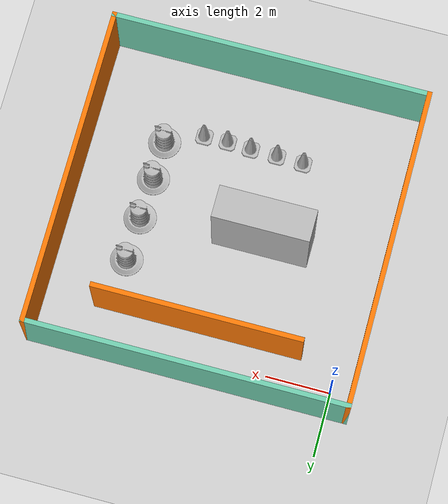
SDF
<sdf version="1.7">
 <world name="default">
  <light name="sun" type="directional">
   <pose>0 0 10 0 -0 0</pose>
   <diffuse>0.8 0.8 0.8 1</diffuse>
   <specular>0.2 0.2 0.2 1</specular>
   <attenuation>
    <range>1000</range>
    <constant>0.9</constant>
    <linear>0.01</linear>
    <quadratic>0.001</quadratic>
   </attenuation>
   <direction>-0.5 0.1 -0.9</direction>
   <spot><inner_angle>0</inner_angle><outer_angle>0</outer_angle><falloff>0</falloff></spot>
  </light>
  <model name="ground_plane">
   <static>1</static>
   <link name="link">
    <collision name="collision">
     <geometry><plane><normal>0 0 1</normal><size>100 100</size></plane></geometry>
     <surface><friction><ode><mu>100</mu><mu2>50</mu2></ode></friction></surface>
    </collision>
    <visual name="visual">
     <cast_shadows>0</cast_shadows>
     <geometry><plane><normal>0 0 1</normal><size>100 100</size></plane></geometry>
     <material>
      <script><uri>file://media/materials/scripts/gazebo.material</uri><name>Gazebo/Grey</name></script>
     </material>
    </visual>
   </link>
  </model>
  <gravity>0 0 -9.8</gravity>
  <magnetic_field>6e-06 2.3e-05 -4.2e-05</magnetic_field>
  <atmosphere type="adiabatic"/>
  <physics type="ode">
   <max_step_size>0.001</max_step_size>
   <real_time_factor>1</real_time_factor>
   <real_time_update_rate>1000</real_time_update_rate>
  </physics>
  <scene><ambient>0.4 0.4 0.4 1</ambient><background>0.7 0.7 0.7 1</background><shadows>1</shadows></scene>
  <audio><device>default</device></audio>
  <spherical_coordinates>
   <surface_model>EARTH_WGS84</surface_model>
   <latitude_deg>0</latitude_deg>
   <longitude_deg>0</longitude_deg>
   <elevation>0</elevation>
   <heading_deg>0</heading_deg>
  </spherical_coordinates>
  <model name="2line">
   <pose>4.29427 -4.22087 0 0 -0 0</pose>
   <link name="Wall_0">
    <collision name="Wall_0_Collision">
     <geometry><box><size>10 0.15 2.5</size></box></geometry>
     <pose>0 0 1.25 0 -0 0</pose>
    </collision>
    <visual name="Wall_0_Visual">
     <pose>0 0 1.25 0 -0 0</pose>
     <geometry><box><size>10 0.15 2.5</size></box></geometry>
     <material>
      <script><uri>file://media/materials/scripts/gazebo.material</uri><name>Gazebo/Grey</name></script>
      <ambient>0.435294 0.796078 0.67451 1</ambient>
     </material>
     <meta><layer>0</layer></meta>
    </visual>
    <pose>-0 4.925 0 0 -0 0</pose>
   </link>
   <link name="Wall_2">
    <collision name="Wall_2_Collision">
     <geometry><box><size>10 0.15 2.5</size></box></geometry>
     <pose>0 0 1.25 0 -0 0</pose>
    </collision>
    <visual name="Wall_2_Visual">
     <pose>0 0 1.25 0 -0 0</pose>
     <geometry><box><size>10 0.15 2.5</size></box></geometry>
     <material>
      <script><uri>file://media/materials/scripts/gazebo.material</uri><name>Gazebo/Grey</name></script>
      <ambient>0.996078 0.47451 0.0196078 1</ambient>
     </material>
     <meta><layer>0</layer></meta>
    </visual>
    <pose>-4.925 0 0 0 -0 -1.5708</pose>
   </link>
   <link name="Wall_3">
    <collision name="Wall_3_Collision">
     <geometry><box><size>10 0.15 2.5</size></box></geometry>
     <pose>0 0 1.25 0 -0 0</pose>
    </collision>
    <visual name="Wall_3_Visual">
     <pose>0 0 1.25 0 -0 0</pose>
     <geometry><box><size>10 0.15 2.5</size></box></geometry>
     <material>
      <script><uri>file://media/materials/scripts/gazebo.material</uri><name>Gazebo/Grey</name></script>
      <ambient>0.435294 0.796078 0.67451 1</ambient>
     </material>
     <meta><layer>0</layer></meta>
    </visual>
    <pose>-0 -4.925 0 0 -0 0</pose>
   </link>
   <link name="Wall_4">
    <collision name="Wall_4_Collision">
     <geometry><box><size>10 0.15 2.5</size></box></geometry>
     <pose>0 0 1.25 0 -0 0</pose>
    </collision>
    <visual name="Wall_4_Visual">
     <pose>0 0 1.25 0 -0 0</pose>
     <geometry><box><size>10 0.15 2.5</size></box></geometry>
     <material>
      <script><uri>file://media/materials/scripts/gazebo.material</uri><name>Gazebo/Grey</name></script>
      <ambient>0.996078 0.47451 0.0196078 1</ambient>
     </material>
     <meta><layer>0</layer></meta>
    </visual>
    <pose>4.925 0 0 0 -0 1.5708</pose>
   </link>
   <link name="Wall_7">
    <collision name="Wall_7_Collision">
     <geometry><box><size>6.5 0.15 2.5</size></box></geometry>
     <pose>0 0 1.25 0 -0 0</pose>
    </collision>
    <visual name="Wall_7_Visual">
     <pose>0 0 1.25 0 -0 0</pose>
     <geometry><box><size>6.5 0.15 2.5</size></box></geometry>
     <material>
      <script><uri>file://media/materials/scripts/gazebo.material</uri><name>Gazebo/Grey</name></script>
      <ambient>0.996078 0.47451 0.0196078 1</ambient>
     </material>
     <meta><layer>0</layer></meta>
    </visual>
    <pose>0.058591 3.38062 0 0 -0 0</pose>
   </link>
   <static>1</static>
  </model>
  <model name="Construction Barrel">
   <link name="link">
    <inertial>
     <pose>0 0 0.4 0 -0 0</pose>
     <mass>500</mass>
     <inertia><ixx>51.2096</ixx><iyy>51.2096</iyy><izz>25</izz><ixy>0</ixy><ixz>0</ixz><iyz>0</iyz></inertia>
    </inertial>
    <collision name="collision">
     <geometry><mesh><uri>model://construction_barrel/meshes/construction_barrel.dae</uri></mesh></geometry>
    </collision>
    <visual name="visual">
     <geometry><mesh><uri>model://construction_barrel/meshes/construction_barrel.dae</uri></mesh></geometry>
    </visual>
   </link>
   <pose>7.04131 -2.41977 -3e-06 -7e-06 -1.2e-05 -2.5e-05</pose>
  </model>
  <model name="Construction Barrel_0">
   <link name="link">
    <inertial>
     <pose>0 0 0.4 0 -0 0</pose>
     <mass>500</mass>
     <inertia><ixx>51.2096</ixx><iyy>51.2096</iyy><izz>25</izz><ixy>0</ixy><ixz>0</ixz><iyz>0</iyz></inertia>
    </inertial>
    <collision name="collision">
     <geometry><mesh><uri>model://construction_barrel/meshes/construction_barrel.dae</uri></mesh></geometry>
    </collision>
    <visual name="visual">
     <geometry><mesh><uri>model://construction_barrel/meshes/construction_barrel.dae</uri></mesh></geometry>
    </visual>
   </link>
   <pose>7.00596 -3.8068 0 0 0 -2.2e-05</pose>
  </model>
  <model name="Construction Barrel_1">
   <link name="link">
    <inertial>
     <pose>0 0 0.4 0 -0 0</pose>
     <mass>500</mass>
     <inertia><ixx>51.2096</ixx><iyy>51.2096</iyy><izz>25</izz><ixy>0</ixy><ixz>0</ixz><iyz>0</iyz></inertia>
    </inertial>
    <collision name="collision">
     <geometry><mesh><uri>model://construction_barrel/meshes/construction_barrel.dae</uri></mesh></geometry>
    </collision>
    <visual name="visual">
     <geometry><mesh><uri>model://construction_barrel/meshes/construction_barrel.dae</uri></mesh></geometry>
    </visual>
   </link>
   <pose>6.94779 -5.11298 -3e-06 -6e-06 -5e-06 -2e-05</pose>
  </model>
  <model name="Construction Barrel_2">
   <link name="link">
    <inertial>
     <pose>0 0 0.4 0 -0 0</pose>
     <mass>500</mass>
     <inertia><ixx>51.2096</ixx><iyy>51.2096</iyy><izz>25</izz><ixy>0</ixy><ixz>0</ixz><iyz>0</iyz></inertia>
    </inertial>
    <collision name="collision">
     <geometry><mesh><uri>model://construction_barrel/meshes/construction_barrel.dae</uri></mesh></geometry>
    </collision>
    <visual name="visual">
     <geometry><mesh><uri>model://construction_barrel/meshes/construction_barrel.dae</uri></mesh></geometry>
    </visual>
   </link>
   <pose>6.92659 -6.34385 0 0 0 -2e-05</pose>
  </model>
  <model name="Construction Cone">
   <link name="link">
    <collision name="collision">
     <geometry>
      <mesh><scale>10 10 10</scale><uri>model://construction_cone/meshes/construction_cone.dae</uri></mesh>
     </geometry>
    </collision>
    <visual name="visual">
     <geometry>
      <mesh><scale>10 10 10</scale><uri>model://construction_cone/meshes/construction_cone.dae</uri></mesh>
     </geometry>
    </visual>
    <inertial>
     <inertia><ixx>1</ixx><ixy>0</ixy><ixz>0</ixz><iyy>1</iyy><iyz>0</iyz><izz>1</izz></inertia>
     <mass>1</mass>
    </inertial>
   </link>
   <pose>5.7834 -6.84698 -0 0 -1e-06 0</pose>
  </model>
  <model name="Construction Cone_0">
   <link name="link">
    <collision name="collision">
     <geometry>
      <mesh><scale>10 10 10</scale><uri>model://construction_cone/meshes/construction_cone.dae</uri></mesh>
     </geometry>
    </collision>
    <visual name="visual">
     <geometry>
      <mesh><scale>10 10 10</scale><uri>model://construction_cone/meshes/construction_cone.dae</uri></mesh>
     </geometry>
    </visual>
    <inertial>
     <inertia><ixx>1</ixx><ixy>0</ixy><ixz>0</ixz><iyy>1</iyy><iyz>0</iyz><izz>1</izz></inertia>
     <mass>1</mass>
    </inertial>
   </link>
   <pose>5.03302 -6.86003 -0 0 -0 0</pose>
  </model>
  <model name="Construction Cone_1">
   <link name="link">
    <collision name="collision">
     <geometry>
      <mesh><scale>10 10 10</scale><uri>model://construction_cone/meshes/construction_cone.dae</uri></mesh>
     </geometry>
    </collision>
    <visual name="visual">
     <geometry>
      <mesh><scale>10 10 10</scale><uri>model://construction_cone/meshes/construction_cone.dae</uri></mesh>
     </geometry>
    </visual>
    <inertial>
     <inertia><ixx>1</ixx><ixy>0</ixy><ixz>0</ixz><iyy>1</iyy><iyz>0</iyz><izz>1</izz></inertia>
     <mass>1</mass>
    </inertial>
   </link>
   <pose>4.28284 -6.81839 -1e-05 -1e-06 0 0</pose>
  </model>
  <model name="Construction Cone_2">
   <link name="link">
    <collision name="collision">
     <geometry>
      <mesh><scale>10 10 10</scale><uri>model://construction_cone/meshes/construction_cone.dae</uri></mesh>
     </geometry>
    </collision>
    <visual name="visual">
     <geometry>
      <mesh><scale>10 10 10</scale><uri>model://construction_cone/meshes/construction_cone.dae</uri></mesh>
     </geometry>
    </visual>
    <inertial>
     <inertia><ixx>1</ixx><ixy>0</ixy><ixz>0</ixz><iyy>1</iyy><iyz>0</iyz><izz>1</izz></inertia>
     <mass>1</mass>
    </inertial>
   </link>
   <pose>3.4414 -6.81059 -0 0 -0 0</pose>
  </model>
  <model name="Construction Cone_3">
   <link name="link">
    <collision name="collision">
     <geometry>
      <mesh><scale>10 10 10</scale><uri>model://construction_cone/meshes/construction_cone.dae</uri></mesh>
     </geometry>
    </collision>
    <visual name="visual">
     <geometry>
      <mesh><scale>10 10 10</scale><uri>model://construction_cone/meshes/construction_cone.dae</uri></mesh>
     </geometry>
    </visual>
    <inertial>
     <inertia><ixx>1</ixx><ixy>0</ixy><ixz>0</ixz><iyy>1</iyy><iyz>0</iyz><izz>1</izz></inertia>
     <mass>1</mass>
    </inertial>
   </link>
   <pose>2.59936 -6.78434 -0 0 -0 0</pose>
  </model>
  <model name="brick_box_3x1x3">
   <static>1</static>
   <link name="chassis">
    <pose>0 0 1.5 0 -0 0</pose>
    <collision name="collision"><geometry><box><size>3 1 3</size></box></geometry></collision>
    <visual name="visual">
     <geometry><mesh><uri>model://brick_box_3x1x3/meshes/simple_box.dae</uri><scale>3 1 3</scale></mesh></geometry>
     <material>
      <script>
       <uri>model://brick_box_3x1x3/materials/scripts</uri>
       <uri>model://brick_box_3x1x3/materials/textures</uri>
       <name>BrickBox/Diffuse</name>
      </script>
     </material>
    </visual>
   </link>
   <pose>3.17585 -4.10871 0 0 -0 0</pose>
  </model>
 </world>
</sdf>
